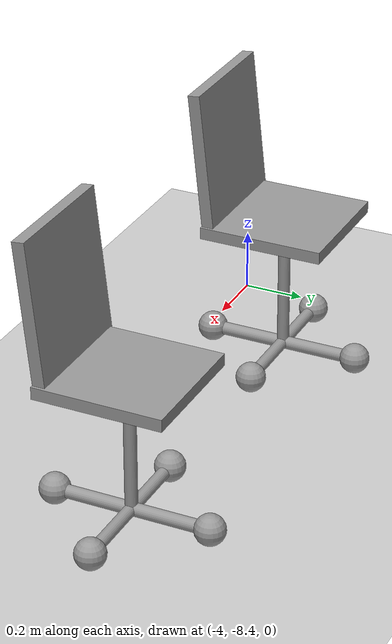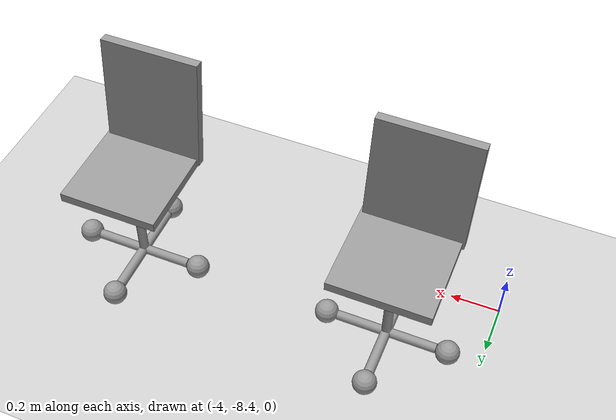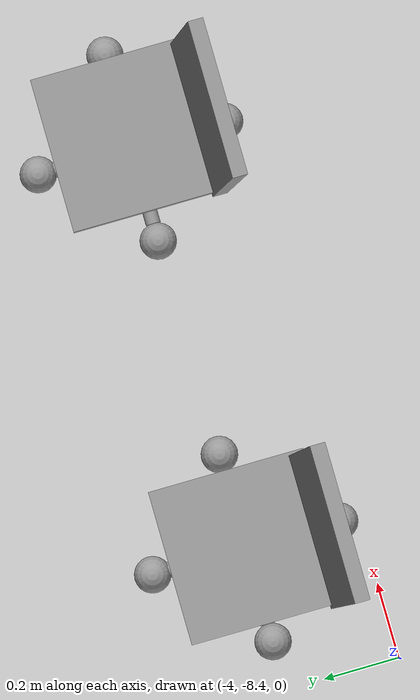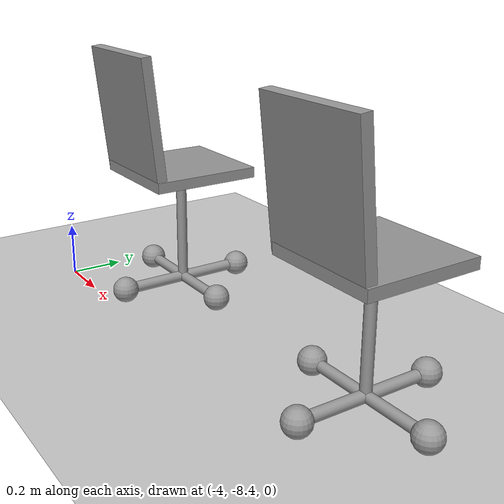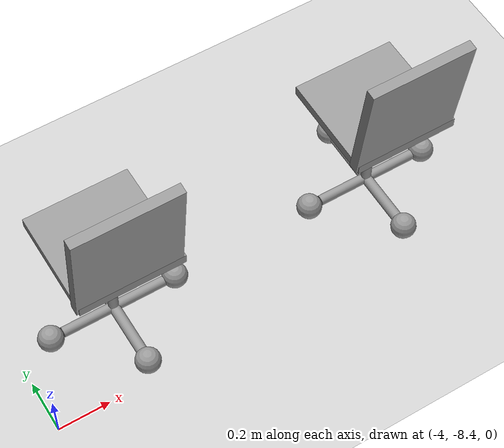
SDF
<sdf version="1.6">
 <world name="default">
  <model name="ground_plane">
   <static>1</static>
   <link name="link">
    <collision name="collision">
     <geometry><plane><normal>0 0 1</normal><size>100 100</size></plane></geometry>
     <surface><friction><ode><mu>100</mu><mu2>50</mu2></ode></friction></surface>
    </collision>
    <visual name="visual">
     <cast_shadows>0</cast_shadows>
     <geometry><plane><normal>0 0 1</normal><size>100 100</size></plane></geometry>
     <material>
      <script><uri>file://media/materials/scripts/gazebo.material</uri><name>Gazebo/Grey</name></script>
     </material>
    </visual>
   </link>
  </model>
  <model name="Sedia_2">
   <link name="link">
    <inertial>
     <mass>1</mass>
     <inertia><ixx>0.1</ixx><ixy>0</ixy><ixz>0</ixz><iyy>0.1</iyy><iyz>0</iyz><izz>0.1</izz></inertia>
     <pose>0 -0.05 0 0 -0 0</pose>
    </inertial>
    <pose>0 -0.05 0.04 0 -0 0</pose>
    <visual name="visual">
     <geometry><sphere><radius>0.0479725</radius></sphere></geometry>
     <material>
      <script><name>Gazebo/Grey</name><uri>file://media/materials/scripts/gazebo.material</uri></script>
      <shader type="vertex"><normal_map>__default__</normal_map></shader>
      <ambient>0.3 0.3 0.3 1</ambient>
      <diffuse>0.7 0.7 0.7 1</diffuse>
      <specular>0.01 0.01 0.01 1</specular>
      <emissive>0 0 0 1</emissive>
     </material>
    </visual>
    <collision name="collision">
     <geometry><sphere><radius>0.047973</radius></sphere></geometry>
     <surface>
      <friction>
       <ode><mu>1</mu><mu2>1</mu2><fdir1>0 0 0</fdir1><slip1>0</slip1><slip2>0</slip2></ode>
       <torsional>
        <coefficient>1</coefficient>
        <patch_radius>0</patch_radius>
        <surface_radius>0</surface_radius>
        <use_patch_radius>1</use_patch_radius>
        <ode><slip>0</slip></ode>
       </torsional>
      </friction>
      <bounce><restitution_coefficient>0</restitution_coefficient><threshold>1e+06</threshold></bounce>
      <contact>
       <collide_without_contact>0</collide_without_contact>
       <collide_without_contact_bitmask>1</collide_without_contact_bitmask>
       <collide_bitmask>1</collide_bitmask>
       <ode>
        <soft_cfm>0</soft_cfm>
        <soft_erp>0.2</soft_erp>
        <kp>1e+13</kp>
        <kd>1</kd>
        <max_vel>0.01</max_vel>
        <min_depth>0</min_depth>
       </ode>
       <bullet>
        <split_impulse>1</split_impulse>
        <split_impulse_penetration_threshold>-0.01</split_impulse_penetration_threshold>
        <soft_cfm>0</soft_cfm>
        <soft_erp>0.2</soft_erp>
        <kp>1e+13</kp>
        <kd>1</kd>
       </bullet>
      </contact>
     </surface>
    </collision>
   </link>
   <link name="link_0">
    <inertial>
     <mass>0.000595181</mass>
     <inertia>
      <ixx>8.34662e-06</ixx>
      <ixy>0</ixy>
      <ixz>0</ixz>
      <iyy>8.34662e-06</iyy>
      <iyz>0</iyz>
      <izz>1.11586e-07</izz>
     </inertia>
    </inertial>
    <pose>-0 0.2 0.2494 0 -0 0</pose>
    <visual name="visual">
     <geometry><cylinder><radius>0.0193636</radius><length>0.408851</length></cylinder></geometry>
     <material>
      <lighting>1</lighting>
      <script><uri>file://media/materials/scripts/gazebo.material</uri><name>Gazebo/Grey</name></script>
      <shader type="vertex"><normal_map>__default__</normal_map></shader>
      <ambient>0.3 0.3 0.3 1</ambient>
      <diffuse>0.7 0.7 0.7 1</diffuse>
      <specular>0.01 0.01 0.01 1</specular>
      <emissive>0 0 0 1</emissive>
     </material>
    </visual>
    <collision name="collision">
     <geometry><cylinder><radius>0.019364</radius><length>0.408851</length></cylinder></geometry>
     <surface>
      <friction>
       <ode><mu>1</mu><mu2>1</mu2><fdir1>0 0 0</fdir1><slip1>0</slip1><slip2>0</slip2></ode>
       <torsional>
        <coefficient>1</coefficient>
        <patch_radius>0</patch_radius>
        <surface_radius>0</surface_radius>
        <use_patch_radius>1</use_patch_radius>
        <ode><slip>0</slip></ode>
       </torsional>
      </friction>
      <bounce><restitution_coefficient>0</restitution_coefficient><threshold>1e+06</threshold></bounce>
      <contact>
       <collide_without_contact>0</collide_without_contact>
       <collide_without_contact_bitmask>1</collide_without_contact_bitmask>
       <collide_bitmask>1</collide_bitmask>
       <ode>
        <soft_cfm>0</soft_cfm>
        <soft_erp>0.2</soft_erp>
        <kp>1e+13</kp>
        <kd>1</kd>
        <max_vel>0.01</max_vel>
        <min_depth>0</min_depth>
       </ode>
       <bullet>
        <split_impulse>1</split_impulse>
        <split_impulse_penetration_threshold>-0.01</split_impulse_penetration_threshold>
        <soft_cfm>0</soft_cfm>
        <soft_erp>0.2</soft_erp>
        <kp>1e+13</kp>
        <kd>1</kd>
       </bullet>
      </contact>
     </surface>
    </collision>
   </link>
   <link name="link_0_clone">
    <inertial>
     <mass>0.000698061</mass>
     <inertia>
      <ixx>1.02332e-05</ixx>
      <ixy>0</ixy>
      <ixz>0</ixz>
      <iyy>1.02332e-05</iyy>
      <iyz>0</iyz>
      <izz>1.50251e-07</izz>
     </inertia>
    </inertial>
    <pose>0 0.2 0.04 -1.571 -0 0</pose>
    <visual name="visual">
     <geometry><cylinder><radius>0.0207471</radius><length>0.417878</length></cylinder></geometry>
     <material>
      <lighting>1</lighting>
      <script><uri>file://media/materials/scripts/gazebo.material</uri><name>Gazebo/Grey</name></script>
      <shader type="vertex"><normal_map>__default__</normal_map></shader>
      <ambient>0.3 0.3 0.3 1</ambient>
      <diffuse>0.7 0.7 0.7 1</diffuse>
      <specular>0.01 0.01 0.01 1</specular>
      <emissive>0 0 0 1</emissive>
     </material>
    </visual>
    <collision name="collision">
     <geometry><cylinder><radius>0.020748</radius><length>0.417878</length></cylinder></geometry>
     <surface>
      <friction>
       <ode><mu>1</mu><mu2>1</mu2><fdir1>0 0 0</fdir1><slip1>0</slip1><slip2>0</slip2></ode>
       <torsional>
        <coefficient>1</coefficient>
        <patch_radius>0</patch_radius>
        <surface_radius>0</surface_radius>
        <use_patch_radius>1</use_patch_radius>
        <ode><slip>0</slip></ode>
       </torsional>
      </friction>
      <bounce><restitution_coefficient>0</restitution_coefficient><threshold>1e+06</threshold></bounce>
      <contact>
       <collide_without_contact>0</collide_without_contact>
       <collide_without_contact_bitmask>1</collide_without_contact_bitmask>
       <collide_bitmask>1</collide_bitmask>
       <ode>
        <soft_cfm>0</soft_cfm>
        <soft_erp>0.2</soft_erp>
        <kp>1e+13</kp>
        <kd>1</kd>
        <max_vel>0.01</max_vel>
        <min_depth>0</min_depth>
       </ode>
       <bullet>
        <split_impulse>1</split_impulse>
        <split_impulse_penetration_threshold>-0.01</split_impulse_penetration_threshold>
        <soft_cfm>0</soft_cfm>
        <soft_erp>0.2</soft_erp>
        <kp>1e+13</kp>
        <kd>1</kd>
       </bullet>
      </contact>
     </surface>
    </collision>
   </link>
   <link name="link_0_clone_0">
    <inertial>
     <mass>0.00059327</mass>
     <inertia>
      <ixx>8.26633e-06</ixx>
      <ixy>0</ixy>
      <ixz>0</ixz>
      <iyy>8.26633e-06</iyy>
      <iyz>0</iyz>
      <izz>1.11228e-07</izz>
     </inertia>
    </inertial>
    <pose>0 0.2 0.04 0 -1.57059 0</pose>
    <visual name="visual">
     <geometry><cylinder><radius>0.0193636</radius><length>0.407525</length></cylinder></geometry>
     <material>
      <lighting>1</lighting>
      <script><uri>file://media/materials/scripts/gazebo.material</uri><name>Gazebo/Grey</name></script>
      <shader type="vertex"><normal_map>__default__</normal_map></shader>
      <ambient>0.3 0.3 0.3 1</ambient>
      <diffuse>0.7 0.7 0.7 1</diffuse>
      <specular>0.01 0.01 0.01 1</specular>
      <emissive>0 0 0 1</emissive>
     </material>
    </visual>
    <collision name="collision">
     <geometry><cylinder><radius>0.019364</radius><length>0.407525</length></cylinder></geometry>
     <surface>
      <friction>
       <ode><mu>1</mu><mu2>1</mu2><fdir1>0 0 0</fdir1><slip1>0</slip1><slip2>0</slip2></ode>
       <torsional>
        <coefficient>1</coefficient>
        <patch_radius>0</patch_radius>
        <surface_radius>0</surface_radius>
        <use_patch_radius>1</use_patch_radius>
        <ode><slip>0</slip></ode>
       </torsional>
      </friction>
      <bounce><restitution_coefficient>0</restitution_coefficient><threshold>1e+06</threshold></bounce>
      <contact>
       <collide_without_contact>0</collide_without_contact>
       <collide_without_contact_bitmask>1</collide_without_contact_bitmask>
       <collide_bitmask>1</collide_bitmask>
       <ode>
        <soft_cfm>0</soft_cfm>
        <soft_erp>0.2</soft_erp>
        <kp>1e+13</kp>
        <kd>1</kd>
        <max_vel>0.01</max_vel>
        <min_depth>0</min_depth>
       </ode>
       <bullet>
        <split_impulse>1</split_impulse>
        <split_impulse_penetration_threshold>-0.01</split_impulse_penetration_threshold>
        <soft_cfm>0</soft_cfm>
        <soft_erp>0.2</soft_erp>
        <kp>1e+13</kp>
        <kd>1</kd>
       </bullet>
      </contact>
     </surface>
    </collision>
   </link>
   <link name="link_1">
    <inertial>
     <mass>0.00616304</mass>
     <inertia>
      <ixx>8.379e-05</ixx>
      <ixy>0</ixy>
      <ixz>0</ixz>
      <iyy>8.148e-05</iyy>
      <iyz>0</iyz>
      <izz>0.00016374</izz>
     </inertia>
    </inertial>
    <pose>-0 0.2 0.48 0 -0 0</pose>
    <visual name="visual">
     <geometry><box><size>0.396445 0.402068 0.038566</size></box></geometry>
     <material>
      <lighting>1</lighting>
      <script><uri>file://media/materials/scripts/gazebo.material</uri><name>Gazebo/Grey</name></script>
      <shader type="vertex"><normal_map>__default__</normal_map></shader>
      <ambient>0.3 0.3 0.3 1</ambient>
      <diffuse>0.7 0.7 0.7 1</diffuse>
      <specular>0.01 0.01 0.01 1</specular>
      <emissive>0 0 0 1</emissive>
     </material>
    </visual>
    <collision name="collision">
     <geometry><box><size>0.396445 0.402068 0.038566</size></box></geometry>
     <surface>
      <friction>
       <ode><mu>1</mu><mu2>1</mu2><fdir1>0 0 0</fdir1><slip1>0</slip1><slip2>0</slip2></ode>
       <torsional>
        <coefficient>1</coefficient>
        <patch_radius>0</patch_radius>
        <surface_radius>0</surface_radius>
        <use_patch_radius>1</use_patch_radius>
        <ode><slip>0</slip></ode>
       </torsional>
      </friction>
      <bounce><restitution_coefficient>0</restitution_coefficient><threshold>1e+06</threshold></bounce>
      <contact>
       <collide_without_contact>0</collide_without_contact>
       <collide_without_contact_bitmask>1</collide_without_contact_bitmask>
       <collide_bitmask>1</collide_bitmask>
       <ode>
        <soft_cfm>0</soft_cfm>
        <soft_erp>0.2</soft_erp>
        <kp>1e+13</kp>
        <kd>1</kd>
        <max_vel>0.01</max_vel>
        <min_depth>0</min_depth>
       </ode>
       <bullet>
        <split_impulse>1</split_impulse>
        <split_impulse_penetration_threshold>-0.01</split_impulse_penetration_threshold>
        <soft_cfm>0</soft_cfm>
        <soft_erp>0.2</soft_erp>
        <kp>1e+13</kp>
        <kd>1</kd>
       </bullet>
      </contact>
     </surface>
    </collision>
   </link>
   <link name="link_1_clone">
    <inertial>
     <mass>0.0072018</mass>
     <inertia>
      <ixx>0.000133376</ixx>
      <ixy>0</ixy>
      <ixz>0</ixz>
      <iyy>9.52174e-05</iyy>
      <iyz>0</iyz>
      <izz>0.000226808</izz>
     </inertia>
    </inertial>
    <pose>-0.008803 -0.002064 0.701044 1.67698 -0 0</pose>
    <visual name="visual">
     <geometry><box><size>0.396445 0.46984 0.038566</size></box></geometry>
     <material>
      <lighting>1</lighting>
      <script><uri>file://media/materials/scripts/gazebo.material</uri><name>Gazebo/Grey</name></script>
      <shader type="vertex"><normal_map>__default__</normal_map></shader>
      <ambient>0.3 0.3 0.3 1</ambient>
      <diffuse>0.7 0.7 0.7 1</diffuse>
      <specular>0.01 0.01 0.01 1</specular>
      <emissive>0 0 0 1</emissive>
     </material>
    </visual>
    <collision name="collision">
     <geometry><box><size>0.396445 0.46984 0.038566</size></box></geometry>
     <surface>
      <friction>
       <ode><mu>1</mu><mu2>1</mu2><fdir1>0 0 0</fdir1><slip1>0</slip1><slip2>0</slip2></ode>
       <torsional>
        <coefficient>1</coefficient>
        <patch_radius>0</patch_radius>
        <surface_radius>0</surface_radius>
        <use_patch_radius>1</use_patch_radius>
        <ode><slip>0</slip></ode>
       </torsional>
      </friction>
      <bounce><restitution_coefficient>0</restitution_coefficient><threshold>1e+06</threshold></bounce>
      <contact>
       <collide_without_contact>0</collide_without_contact>
       <collide_without_contact_bitmask>1</collide_without_contact_bitmask>
       <collide_bitmask>1</collide_bitmask>
       <ode>
        <soft_cfm>0</soft_cfm>
        <soft_erp>0.2</soft_erp>
        <kp>1e+13</kp>
        <kd>1</kd>
        <max_vel>0.01</max_vel>
        <min_depth>0</min_depth>
       </ode>
       <bullet>
        <split_impulse>1</split_impulse>
        <split_impulse_penetration_threshold>-0.01</split_impulse_penetration_threshold>
        <soft_cfm>0</soft_cfm>
        <soft_erp>0.2</soft_erp>
        <kp>1e+13</kp>
        <kd>1</kd>
       </bullet>
      </contact>
     </surface>
    </collision>
   </link>
   <link name="link_clone">
    <inertial>
     <mass>1</mass>
     <inertia><ixx>0.1</ixx><ixy>0</ixy><ixz>0</ixz><iyy>0.1</iyy><iyz>0</iyz><izz>0.1</izz></inertia>
     <pose>0 0 0.04 0 -0 0</pose>
    </inertial>
    <pose>0.25 0.2 0.04 0 -0 0</pose>
    <visual name="visual">
     <geometry><sphere><radius>0.0479725</radius></sphere></geometry>
     <material>
      <script><name>Gazebo/Grey</name><uri>file://media/materials/scripts/gazebo.material</uri></script>
      <shader type="vertex"><normal_map>__default__</normal_map></shader>
      <ambient>0.3 0.3 0.3 1</ambient>
      <diffuse>0.7 0.7 0.7 1</diffuse>
      <specular>0.01 0.01 0.01 1</specular>
      <emissive>0 0 0 1</emissive>
     </material>
    </visual>
    <collision name="collision">
     <geometry><sphere><radius>0.047973</radius></sphere></geometry>
     <surface>
      <friction>
       <ode><mu>1</mu><mu2>1</mu2><fdir1>0 0 0</fdir1><slip1>0</slip1><slip2>0</slip2></ode>
       <torsional>
        <coefficient>1</coefficient>
        <patch_radius>0</patch_radius>
        <surface_radius>0</surface_radius>
        <use_patch_radius>1</use_patch_radius>
        <ode><slip>0</slip></ode>
       </torsional>
      </friction>
      <bounce><restitution_coefficient>0</restitution_coefficient><threshold>1e+06</threshold></bounce>
      <contact>
       <collide_without_contact>0</collide_without_contact>
       <collide_without_contact_bitmask>1</collide_without_contact_bitmask>
       <collide_bitmask>1</collide_bitmask>
       <ode>
        <soft_cfm>0</soft_cfm>
        <soft_erp>0.2</soft_erp>
        <kp>1e+13</kp>
        <kd>1</kd>
        <max_vel>0.01</max_vel>
        <min_depth>0</min_depth>
       </ode>
       <bullet>
        <split_impulse>1</split_impulse>
        <split_impulse_penetration_threshold>-0.01</split_impulse_penetration_threshold>
        <soft_cfm>0</soft_cfm>
        <soft_erp>0.2</soft_erp>
        <kp>1e+13</kp>
        <kd>1</kd>
       </bullet>
      </contact>
     </surface>
    </collision>
   </link>
   <link name="link_clone_0">
    <inertial>
     <mass>1</mass>
     <inertia><ixx>0.1</ixx><ixy>0</ixy><ixz>0</ixz><iyy>0.1</iyy><iyz>0</iyz><izz>0.1</izz></inertia>
    </inertial>
    <pose>-0 0.45 0.04 0 -0 0</pose>
    <visual name="visual">
     <geometry><sphere><radius>0.0479725</radius></sphere></geometry>
     <material>
      <script><name>Gazebo/Grey</name><uri>file://media/materials/scripts/gazebo.material</uri></script>
      <shader type="vertex"><normal_map>__default__</normal_map></shader>
      <ambient>0.3 0.3 0.3 1</ambient>
      <diffuse>0.7 0.7 0.7 1</diffuse>
      <specular>0.01 0.01 0.01 1</specular>
      <emissive>0 0 0 1</emissive>
     </material>
    </visual>
    <collision name="collision">
     <geometry><sphere><radius>0.047973</radius></sphere></geometry>
     <surface>
      <friction>
       <ode><mu>1</mu><mu2>1</mu2><fdir1>0 0 0</fdir1><slip1>0</slip1><slip2>0</slip2></ode>
       <torsional>
        <coefficient>1</coefficient>
        <patch_radius>0</patch_radius>
        <surface_radius>0</surface_radius>
        <use_patch_radius>1</use_patch_radius>
        <ode><slip>0</slip></ode>
       </torsional>
      </friction>
      <bounce><restitution_coefficient>0</restitution_coefficient><threshold>1e+06</threshold></bounce>
      <contact>
       <collide_without_contact>0</collide_without_contact>
       <collide_without_contact_bitmask>1</collide_without_contact_bitmask>
       <collide_bitmask>1</collide_bitmask>
       <ode>
        <soft_cfm>0</soft_cfm>
        <soft_erp>0.2</soft_erp>
        <kp>1e+13</kp>
        <kd>1</kd>
        <max_vel>0.01</max_vel>
        <min_depth>0</min_depth>
       </ode>
       <bullet>
        <split_impulse>1</split_impulse>
        <split_impulse_penetration_threshold>-0.01</split_impulse_penetration_threshold>
        <soft_cfm>0</soft_cfm>
        <soft_erp>0.2</soft_erp>
        <kp>1e+13</kp>
        <kd>1</kd>
       </bullet>
      </contact>
     </surface>
    </collision>
   </link>
   <link name="link_clone_1">
    <inertial>
     <mass>1</mass>
     <inertia><ixx>0.1</ixx><ixy>0</ixy><ixz>0</ixz><iyy>0.1</iyy><iyz>0</iyz><izz>0.1</izz></inertia>
    </inertial>
    <pose>-0.25 0.2 0.04 0 -0 0</pose>
    <visual name="visual">
     <geometry><sphere><radius>0.0479725</radius></sphere></geometry>
     <material>
      <script><name>Gazebo/Grey</name><uri>file://media/materials/scripts/gazebo.material</uri></script>
      <shader type="vertex"><normal_map>__default__</normal_map></shader>
      <ambient>0.3 0.3 0.3 1</ambient>
      <diffuse>0.7 0.7 0.7 1</diffuse>
      <specular>0.01 0.01 0.01 1</specular>
      <emissive>0 0 0 1</emissive>
     </material>
    </visual>
    <collision name="collision">
     <geometry><sphere><radius>0.047973</radius></sphere></geometry>
     <surface>
      <friction>
       <ode><mu>1</mu><mu2>1</mu2><fdir1>0 0 0</fdir1><slip1>0</slip1><slip2>0</slip2></ode>
       <torsional>
        <coefficient>1</coefficient>
        <patch_radius>0</patch_radius>
        <surface_radius>0</surface_radius>
        <use_patch_radius>1</use_patch_radius>
        <ode><slip>0</slip></ode>
       </torsional>
      </friction>
      <bounce><restitution_coefficient>0</restitution_coefficient><threshold>1e+06</threshold></bounce>
      <contact>
       <collide_without_contact>0</collide_without_contact>
       <collide_without_contact_bitmask>1</collide_without_contact_bitmask>
       <collide_bitmask>1</collide_bitmask>
       <ode>
        <soft_cfm>0</soft_cfm>
        <soft_erp>0.2</soft_erp>
        <kp>1e+13</kp>
        <kd>1</kd>
        <max_vel>0.01</max_vel>
        <min_depth>0</min_depth>
       </ode>
       <bullet>
        <split_impulse>1</split_impulse>
        <split_impulse_penetration_threshold>-0.01</split_impulse_penetration_threshold>
        <soft_cfm>0</soft_cfm>
        <soft_erp>0.2</soft_erp>
        <kp>1e+13</kp>
        <kd>1</kd>
       </bullet>
      </contact>
     </surface>
    </collision>
   </link>
   <joint name="link_0_clone_0_JOINT_1" type="fixed">
    <parent>link_0_clone_0</parent>
    <child>link_clone</child>
    <physics>
     <ode><limit><cfm>0</cfm><erp>0.2</erp></limit><suspension><cfm>0</cfm><erp>0.2</erp></suspension></ode>
    </physics>
   </joint>
   <joint name="link_0_clone_0_JOINT_2" type="fixed">
    <parent>link_0_clone_0</parent>
    <child>link_clone_1</child>
    <physics>
     <ode><limit><cfm>0</cfm><erp>0.2</erp></limit><suspension><cfm>0</cfm><erp>0.2</erp></suspension></ode>
    </physics>
   </joint>
   <joint name="link_0_clone_JOINT_3" type="fixed">
    <parent>link_0_clone</parent>
    <child>link_clone_0</child>
    <physics>
     <ode><limit><cfm>0</cfm><erp>0.2</erp></limit><suspension><cfm>0</cfm><erp>0.2</erp></suspension></ode>
    </physics>
   </joint>
   <joint name="link_0_clone_JOINT_4" type="fixed">
    <parent>link_0_clone</parent>
    <child>link</child>
    <physics>
     <ode><limit><cfm>0</cfm><erp>0.2</erp></limit><suspension><cfm>0</cfm><erp>0.2</erp></suspension></ode>
    </physics>
   </joint>
   <joint name="link_1_JOINT_0" type="fixed">
    <parent>link_1</parent>
    <child>link_1_clone</child>
    <physics>
     <ode><limit><cfm>0</cfm><erp>0.2</erp></limit><suspension><cfm>0</cfm><erp>0.2</erp></suspension></ode>
    </physics>
   </joint>
   <joint name="link_1_JOINT_4" type="fixed">
    <parent>link_1</parent>
    <child>link_0</child>
    <physics>
     <ode><limit><cfm>0</cfm><erp>0.2</erp></limit><suspension><cfm>0</cfm><erp>0.2</erp></suspension></ode>
    </physics>
   </joint>
   <joint name="link_JOINT_3" type="fixed">
    <parent>link</parent>
    <child>link_0</child>
    <physics>
     <ode><limit><cfm>0</cfm><erp>0.2</erp></limit><suspension><cfm>0</cfm><erp>0.2</erp></suspension></ode>
    </physics>
   </joint>
   <joint name="link_clone_0_JOINT_0" type="fixed">
    <parent>link_clone_0</parent>
    <child>link_0_LINK_FRAME_VISUAL___Y_AXIS</child>
    <physics>
     <ode><limit><cfm>0</cfm><erp>0.2</erp></limit><suspension><cfm>0</cfm><erp>0.2</erp></suspension></ode>
    </physics>
   </joint>
   <joint name="link_clone_1_JOINT_2" type="fixed">
    <parent>link_clone_1</parent>
    <child>link_0</child>
    <physics>
     <ode><limit><cfm>0</cfm><erp>0.2</erp></limit><suspension><cfm>0</cfm><erp>0.2</erp></suspension></ode>
    </physics>
   </joint>
   <joint name="link_clone_JOINT_1" type="fixed">
    <parent>link_clone</parent>
    <child>link_0</child>
    <physics>
     <ode><limit><cfm>0</cfm><erp>0.2</erp></limit><suspension><cfm>0</cfm><erp>0.2</erp></suspension></ode>
    </physics>
   </joint>
   <static>0</static>
   <pose>-3.61941 -8.29886 0.007985 0.000343 5e-06 -1e-06</pose>
  </model>
  <model name="Sedia_3">
   <link name="link">
    <inertial>
     <mass>1</mass>
     <inertia><ixx>0.1</ixx><ixy>0</ixy><ixz>0</ixz><iyy>0.1</iyy><iyz>0</iyz><izz>0.1</izz></inertia>
     <pose>0 -0.05 0 0 -0 0</pose>
    </inertial>
    <pose>0 -0.05 0.04 0 -0 0</pose>
    <visual name="visual">
     <geometry><sphere><radius>0.0479725</radius></sphere></geometry>
     <material>
      <script><name>Gazebo/Grey</name><uri>file://media/materials/scripts/gazebo.material</uri></script>
      <shader type="vertex"><normal_map>__default__</normal_map></shader>
      <ambient>0.3 0.3 0.3 1</ambient>
      <diffuse>0.7 0.7 0.7 1</diffuse>
      <specular>0.01 0.01 0.01 1</specular>
      <emissive>0 0 0 1</emissive>
     </material>
    </visual>
    <collision name="collision">
     <geometry><sphere><radius>0.047973</radius></sphere></geometry>
     <surface>
      <friction>
       <ode><mu>1</mu><mu2>1</mu2><fdir1>0 0 0</fdir1><slip1>0</slip1><slip2>0</slip2></ode>
       <torsional>
        <coefficient>1</coefficient>
        <patch_radius>0</patch_radius>
        <surface_radius>0</surface_radius>
        <use_patch_radius>1</use_patch_radius>
        <ode><slip>0</slip></ode>
       </torsional>
      </friction>
      <bounce><restitution_coefficient>0</restitution_coefficient><threshold>1e+06</threshold></bounce>
      <contact>
       <collide_without_contact>0</collide_without_contact>
       <collide_without_contact_bitmask>1</collide_without_contact_bitmask>
       <collide_bitmask>1</collide_bitmask>
       <ode>
        <soft_cfm>0</soft_cfm>
        <soft_erp>0.2</soft_erp>
        <kp>1e+13</kp>
        <kd>1</kd>
        <max_vel>0.01</max_vel>
        <min_depth>0</min_depth>
       </ode>
       <bullet>
        <split_impulse>1</split_impulse>
        <split_impulse_penetration_threshold>-0.01</split_impulse_penetration_threshold>
        <soft_cfm>0</soft_cfm>
        <soft_erp>0.2</soft_erp>
        <kp>1e+13</kp>
        <kd>1</kd>
       </bullet>
      </contact>
     </surface>
    </collision>
   </link>
   <link name="link_0">
    <inertial>
     <mass>0.000595181</mass>
     <inertia>
      <ixx>8.34662e-06</ixx>
      <ixy>0</ixy>
      <ixz>0</ixz>
      <iyy>8.34662e-06</iyy>
      <iyz>0</iyz>
      <izz>1.11586e-07</izz>
     </inertia>
    </inertial>
    <pose>-0 0.2 0.2494 0 -0 0</pose>
    <visual name="visual">
     <geometry><cylinder><radius>0.0193636</radius><length>0.408851</length></cylinder></geometry>
     <material>
      <lighting>1</lighting>
      <script><uri>file://media/materials/scripts/gazebo.material</uri><name>Gazebo/Grey</name></script>
      <shader type="vertex"><normal_map>__default__</normal_map></shader>
      <ambient>0.3 0.3 0.3 1</ambient>
      <diffuse>0.7 0.7 0.7 1</diffuse>
      <specular>0.01 0.01 0.01 1</specular>
      <emissive>0 0 0 1</emissive>
     </material>
    </visual>
    <collision name="collision">
     <geometry><cylinder><radius>0.019364</radius><length>0.408851</length></cylinder></geometry>
     <surface>
      <friction>
       <ode><mu>1</mu><mu2>1</mu2><fdir1>0 0 0</fdir1><slip1>0</slip1><slip2>0</slip2></ode>
       <torsional>
        <coefficient>1</coefficient>
        <patch_radius>0</patch_radius>
        <surface_radius>0</surface_radius>
        <use_patch_radius>1</use_patch_radius>
        <ode><slip>0</slip></ode>
       </torsional>
      </friction>
      <bounce><restitution_coefficient>0</restitution_coefficient><threshold>1e+06</threshold></bounce>
      <contact>
       <collide_without_contact>0</collide_without_contact>
       <collide_without_contact_bitmask>1</collide_without_contact_bitmask>
       <collide_bitmask>1</collide_bitmask>
       <ode>
        <soft_cfm>0</soft_cfm>
        <soft_erp>0.2</soft_erp>
        <kp>1e+13</kp>
        <kd>1</kd>
        <max_vel>0.01</max_vel>
        <min_depth>0</min_depth>
       </ode>
       <bullet>
        <split_impulse>1</split_impulse>
        <split_impulse_penetration_threshold>-0.01</split_impulse_penetration_threshold>
        <soft_cfm>0</soft_cfm>
        <soft_erp>0.2</soft_erp>
        <kp>1e+13</kp>
        <kd>1</kd>
       </bullet>
      </contact>
     </surface>
    </collision>
   </link>
   <link name="link_0_clone">
    <inertial>
     <mass>0.000698061</mass>
     <inertia>
      <ixx>1.02332e-05</ixx>
      <ixy>0</ixy>
      <ixz>0</ixz>
      <iyy>1.02332e-05</iyy>
      <iyz>0</iyz>
      <izz>1.50251e-07</izz>
     </inertia>
    </inertial>
    <pose>0 0.2 0.04 -1.571 -0 0</pose>
    <visual name="visual">
     <geometry><cylinder><radius>0.0207471</radius><length>0.417878</length></cylinder></geometry>
     <material>
      <lighting>1</lighting>
      <script><uri>file://media/materials/scripts/gazebo.material</uri><name>Gazebo/Grey</name></script>
      <shader type="vertex"><normal_map>__default__</normal_map></shader>
      <ambient>0.3 0.3 0.3 1</ambient>
      <diffuse>0.7 0.7 0.7 1</diffuse>
      <specular>0.01 0.01 0.01 1</specular>
      <emissive>0 0 0 1</emissive>
     </material>
    </visual>
    <collision name="collision">
     <geometry><cylinder><radius>0.020748</radius><length>0.417878</length></cylinder></geometry>
     <surface>
      <friction>
       <ode><mu>1</mu><mu2>1</mu2><fdir1>0 0 0</fdir1><slip1>0</slip1><slip2>0</slip2></ode>
       <torsional>
        <coefficient>1</coefficient>
        <patch_radius>0</patch_radius>
        <surface_radius>0</surface_radius>
        <use_patch_radius>1</use_patch_radius>
        <ode><slip>0</slip></ode>
       </torsional>
      </friction>
      <bounce><restitution_coefficient>0</restitution_coefficient><threshold>1e+06</threshold></bounce>
      <contact>
       <collide_without_contact>0</collide_without_contact>
       <collide_without_contact_bitmask>1</collide_without_contact_bitmask>
       <collide_bitmask>1</collide_bitmask>
       <ode>
        <soft_cfm>0</soft_cfm>
        <soft_erp>0.2</soft_erp>
        <kp>1e+13</kp>
        <kd>1</kd>
        <max_vel>0.01</max_vel>
        <min_depth>0</min_depth>
       </ode>
       <bullet>
        <split_impulse>1</split_impulse>
        <split_impulse_penetration_threshold>-0.01</split_impulse_penetration_threshold>
        <soft_cfm>0</soft_cfm>
        <soft_erp>0.2</soft_erp>
        <kp>1e+13</kp>
        <kd>1</kd>
       </bullet>
      </contact>
     </surface>
    </collision>
   </link>
   <link name="link_0_clone_0">
    <inertial>
     <mass>0.00059327</mass>
     <inertia>
      <ixx>8.26633e-06</ixx>
      <ixy>0</ixy>
      <ixz>0</ixz>
      <iyy>8.26633e-06</iyy>
      <iyz>0</iyz>
      <izz>1.11228e-07</izz>
     </inertia>
    </inertial>
    <pose>0 0.2 0.04 0 -1.57059 0</pose>
    <visual name="visual">
     <geometry><cylinder><radius>0.0193636</radius><length>0.407525</length></cylinder></geometry>
     <material>
      <lighting>1</lighting>
      <script><uri>file://media/materials/scripts/gazebo.material</uri><name>Gazebo/Grey</name></script>
      <shader type="vertex"><normal_map>__default__</normal_map></shader>
      <ambient>0.3 0.3 0.3 1</ambient>
      <diffuse>0.7 0.7 0.7 1</diffuse>
      <specular>0.01 0.01 0.01 1</specular>
      <emissive>0 0 0 1</emissive>
     </material>
    </visual>
    <collision name="collision">
     <geometry><cylinder><radius>0.019364</radius><length>0.407525</length></cylinder></geometry>
     <surface>
      <friction>
       <ode><mu>1</mu><mu2>1</mu2><fdir1>0 0 0</fdir1><slip1>0</slip1><slip2>0</slip2></ode>
       <torsional>
        <coefficient>1</coefficient>
        <patch_radius>0</patch_radius>
        <surface_radius>0</surface_radius>
        <use_patch_radius>1</use_patch_radius>
        <ode><slip>0</slip></ode>
       </torsional>
      </friction>
      <bounce><restitution_coefficient>0</restitution_coefficient><threshold>1e+06</threshold></bounce>
      <contact>
       <collide_without_contact>0</collide_without_contact>
       <collide_without_contact_bitmask>1</collide_without_contact_bitmask>
       <collide_bitmask>1</collide_bitmask>
       <ode>
        <soft_cfm>0</soft_cfm>
        <soft_erp>0.2</soft_erp>
        <kp>1e+13</kp>
        <kd>1</kd>
        <max_vel>0.01</max_vel>
        <min_depth>0</min_depth>
       </ode>
       <bullet>
        <split_impulse>1</split_impulse>
        <split_impulse_penetration_threshold>-0.01</split_impulse_penetration_threshold>
        <soft_cfm>0</soft_cfm>
        <soft_erp>0.2</soft_erp>
        <kp>1e+13</kp>
        <kd>1</kd>
       </bullet>
      </contact>
     </surface>
    </collision>
   </link>
   <link name="link_1">
    <inertial>
     <mass>0.00616304</mass>
     <inertia>
      <ixx>8.379e-05</ixx>
      <ixy>0</ixy>
      <ixz>0</ixz>
      <iyy>8.148e-05</iyy>
      <iyz>0</iyz>
      <izz>0.00016374</izz>
     </inertia>
    </inertial>
    <pose>-0 0.2 0.48 0 -0 0</pose>
    <visual name="visual">
     <geometry><box><size>0.396445 0.402068 0.038566</size></box></geometry>
     <material>
      <lighting>1</lighting>
      <script><uri>file://media/materials/scripts/gazebo.material</uri><name>Gazebo/Grey</name></script>
      <shader type="vertex"><normal_map>__default__</normal_map></shader>
      <ambient>0.3 0.3 0.3 1</ambient>
      <diffuse>0.7 0.7 0.7 1</diffuse>
      <specular>0.01 0.01 0.01 1</specular>
      <emissive>0 0 0 1</emissive>
     </material>
    </visual>
    <collision name="collision">
     <geometry><box><size>0.396445 0.402068 0.038566</size></box></geometry>
     <surface>
      <friction>
       <ode><mu>1</mu><mu2>1</mu2><fdir1>0 0 0</fdir1><slip1>0</slip1><slip2>0</slip2></ode>
       <torsional>
        <coefficient>1</coefficient>
        <patch_radius>0</patch_radius>
        <surface_radius>0</surface_radius>
        <use_patch_radius>1</use_patch_radius>
        <ode><slip>0</slip></ode>
       </torsional>
      </friction>
      <bounce><restitution_coefficient>0</restitution_coefficient><threshold>1e+06</threshold></bounce>
      <contact>
       <collide_without_contact>0</collide_without_contact>
       <collide_without_contact_bitmask>1</collide_without_contact_bitmask>
       <collide_bitmask>1</collide_bitmask>
       <ode>
        <soft_cfm>0</soft_cfm>
        <soft_erp>0.2</soft_erp>
        <kp>1e+13</kp>
        <kd>1</kd>
        <max_vel>0.01</max_vel>
        <min_depth>0</min_depth>
       </ode>
       <bullet>
        <split_impulse>1</split_impulse>
        <split_impulse_penetration_threshold>-0.01</split_impulse_penetration_threshold>
        <soft_cfm>0</soft_cfm>
        <soft_erp>0.2</soft_erp>
        <kp>1e+13</kp>
        <kd>1</kd>
       </bullet>
      </contact>
     </surface>
    </collision>
   </link>
   <link name="link_1_clone">
    <inertial>
     <mass>0.0072018</mass>
     <inertia>
      <ixx>0.000133376</ixx>
      <ixy>0</ixy>
      <ixz>0</ixz>
      <iyy>9.52174e-05</iyy>
      <iyz>0</iyz>
      <izz>0.000226808</izz>
     </inertia>
    </inertial>
    <pose>-0.008803 -0.002064 0.701044 1.67698 -0 0</pose>
    <visual name="visual">
     <geometry><box><size>0.396445 0.46984 0.038566</size></box></geometry>
     <material>
      <lighting>1</lighting>
      <script><uri>file://media/materials/scripts/gazebo.material</uri><name>Gazebo/Grey</name></script>
      <shader type="vertex"><normal_map>__default__</normal_map></shader>
      <ambient>0.3 0.3 0.3 1</ambient>
      <diffuse>0.7 0.7 0.7 1</diffuse>
      <specular>0.01 0.01 0.01 1</specular>
      <emissive>0 0 0 1</emissive>
     </material>
    </visual>
    <collision name="collision">
     <geometry><box><size>0.396445 0.46984 0.038566</size></box></geometry>
     <surface>
      <friction>
       <ode><mu>1</mu><mu2>1</mu2><fdir1>0 0 0</fdir1><slip1>0</slip1><slip2>0</slip2></ode>
       <torsional>
        <coefficient>1</coefficient>
        <patch_radius>0</patch_radius>
        <surface_radius>0</surface_radius>
        <use_patch_radius>1</use_patch_radius>
        <ode><slip>0</slip></ode>
       </torsional>
      </friction>
      <bounce><restitution_coefficient>0</restitution_coefficient><threshold>1e+06</threshold></bounce>
      <contact>
       <collide_without_contact>0</collide_without_contact>
       <collide_without_contact_bitmask>1</collide_without_contact_bitmask>
       <collide_bitmask>1</collide_bitmask>
       <ode>
        <soft_cfm>0</soft_cfm>
        <soft_erp>0.2</soft_erp>
        <kp>1e+13</kp>
        <kd>1</kd>
        <max_vel>0.01</max_vel>
        <min_depth>0</min_depth>
       </ode>
       <bullet>
        <split_impulse>1</split_impulse>
        <split_impulse_penetration_threshold>-0.01</split_impulse_penetration_threshold>
        <soft_cfm>0</soft_cfm>
        <soft_erp>0.2</soft_erp>
        <kp>1e+13</kp>
        <kd>1</kd>
       </bullet>
      </contact>
     </surface>
    </collision>
   </link>
   <link name="link_clone">
    <inertial>
     <mass>1</mass>
     <inertia><ixx>0.1</ixx><ixy>0</ixy><ixz>0</ixz><iyy>0.1</iyy><iyz>0</iyz><izz>0.1</izz></inertia>
     <pose>0 0 0.04 0 -0 0</pose>
    </inertial>
    <pose>0.25 0.2 0.04 0 -0 0</pose>
    <visual name="visual">
     <geometry><sphere><radius>0.0479725</radius></sphere></geometry>
     <material>
      <script><name>Gazebo/Grey</name><uri>file://media/materials/scripts/gazebo.material</uri></script>
      <shader type="vertex"><normal_map>__default__</normal_map></shader>
      <ambient>0.3 0.3 0.3 1</ambient>
      <diffuse>0.7 0.7 0.7 1</diffuse>
      <specular>0.01 0.01 0.01 1</specular>
      <emissive>0 0 0 1</emissive>
     </material>
    </visual>
    <collision name="collision">
     <geometry><sphere><radius>0.047973</radius></sphere></geometry>
     <surface>
      <friction>
       <ode><mu>1</mu><mu2>1</mu2><fdir1>0 0 0</fdir1><slip1>0</slip1><slip2>0</slip2></ode>
       <torsional>
        <coefficient>1</coefficient>
        <patch_radius>0</patch_radius>
        <surface_radius>0</surface_radius>
        <use_patch_radius>1</use_patch_radius>
        <ode><slip>0</slip></ode>
       </torsional>
      </friction>
      <bounce><restitution_coefficient>0</restitution_coefficient><threshold>1e+06</threshold></bounce>
      <contact>
       <collide_without_contact>0</collide_without_contact>
       <collide_without_contact_bitmask>1</collide_without_contact_bitmask>
       <collide_bitmask>1</collide_bitmask>
       <ode>
        <soft_cfm>0</soft_cfm>
        <soft_erp>0.2</soft_erp>
        <kp>1e+13</kp>
        <kd>1</kd>
        <max_vel>0.01</max_vel>
        <min_depth>0</min_depth>
       </ode>
       <bullet>
        <split_impulse>1</split_impulse>
        <split_impulse_penetration_threshold>-0.01</split_impulse_penetration_threshold>
        <soft_cfm>0</soft_cfm>
        <soft_erp>0.2</soft_erp>
        <kp>1e+13</kp>
        <kd>1</kd>
       </bullet>
      </contact>
     </surface>
    </collision>
   </link>
   <link name="link_clone_0">
    <inertial>
     <mass>1</mass>
     <inertia><ixx>0.1</ixx><ixy>0</ixy><ixz>0</ixz><iyy>0.1</iyy><iyz>0</iyz><izz>0.1</izz></inertia>
    </inertial>
    <pose>-0 0.45 0.04 0 -0 0</pose>
    <visual name="visual">
     <geometry><sphere><radius>0.0479725</radius></sphere></geometry>
     <material>
      <script><name>Gazebo/Grey</name><uri>file://media/materials/scripts/gazebo.material</uri></script>
      <shader type="vertex"><normal_map>__default__</normal_map></shader>
      <ambient>0.3 0.3 0.3 1</ambient>
      <diffuse>0.7 0.7 0.7 1</diffuse>
      <specular>0.01 0.01 0.01 1</specular>
      <emissive>0 0 0 1</emissive>
     </material>
    </visual>
    <collision name="collision">
     <geometry><sphere><radius>0.047973</radius></sphere></geometry>
     <surface>
      <friction>
       <ode><mu>1</mu><mu2>1</mu2><fdir1>0 0 0</fdir1><slip1>0</slip1><slip2>0</slip2></ode>
       <torsional>
        <coefficient>1</coefficient>
        <patch_radius>0</patch_radius>
        <surface_radius>0</surface_radius>
        <use_patch_radius>1</use_patch_radius>
        <ode><slip>0</slip></ode>
       </torsional>
      </friction>
      <bounce><restitution_coefficient>0</restitution_coefficient><threshold>1e+06</threshold></bounce>
      <contact>
       <collide_without_contact>0</collide_without_contact>
       <collide_without_contact_bitmask>1</collide_without_contact_bitmask>
       <collide_bitmask>1</collide_bitmask>
       <ode>
        <soft_cfm>0</soft_cfm>
        <soft_erp>0.2</soft_erp>
        <kp>1e+13</kp>
        <kd>1</kd>
        <max_vel>0.01</max_vel>
        <min_depth>0</min_depth>
       </ode>
       <bullet>
        <split_impulse>1</split_impulse>
        <split_impulse_penetration_threshold>-0.01</split_impulse_penetration_threshold>
        <soft_cfm>0</soft_cfm>
        <soft_erp>0.2</soft_erp>
        <kp>1e+13</kp>
        <kd>1</kd>
       </bullet>
      </contact>
     </surface>
    </collision>
   </link>
   <link name="link_clone_1">
    <inertial>
     <mass>1</mass>
     <inertia><ixx>0.1</ixx><ixy>0</ixy><ixz>0</ixz><iyy>0.1</iyy><iyz>0</iyz><izz>0.1</izz></inertia>
    </inertial>
    <pose>-0.25 0.2 0.04 0 -0 0</pose>
    <visual name="visual">
     <geometry><sphere><radius>0.0479725</radius></sphere></geometry>
     <material>
      <script><name>Gazebo/Grey</name><uri>file://media/materials/scripts/gazebo.material</uri></script>
      <shader type="vertex"><normal_map>__default__</normal_map></shader>
      <ambient>0.3 0.3 0.3 1</ambient>
      <diffuse>0.7 0.7 0.7 1</diffuse>
      <specular>0.01 0.01 0.01 1</specular>
      <emissive>0 0 0 1</emissive>
     </material>
    </visual>
    <collision name="collision">
     <geometry><sphere><radius>0.047973</radius></sphere></geometry>
     <surface>
      <friction>
       <ode><mu>1</mu><mu2>1</mu2><fdir1>0 0 0</fdir1><slip1>0</slip1><slip2>0</slip2></ode>
       <torsional>
        <coefficient>1</coefficient>
        <patch_radius>0</patch_radius>
        <surface_radius>0</surface_radius>
        <use_patch_radius>1</use_patch_radius>
        <ode><slip>0</slip></ode>
       </torsional>
      </friction>
      <bounce><restitution_coefficient>0</restitution_coefficient><threshold>1e+06</threshold></bounce>
      <contact>
       <collide_without_contact>0</collide_without_contact>
       <collide_without_contact_bitmask>1</collide_without_contact_bitmask>
       <collide_bitmask>1</collide_bitmask>
       <ode>
        <soft_cfm>0</soft_cfm>
        <soft_erp>0.2</soft_erp>
        <kp>1e+13</kp>
        <kd>1</kd>
        <max_vel>0.01</max_vel>
        <min_depth>0</min_depth>
       </ode>
       <bullet>
        <split_impulse>1</split_impulse>
        <split_impulse_penetration_threshold>-0.01</split_impulse_penetration_threshold>
        <soft_cfm>0</soft_cfm>
        <soft_erp>0.2</soft_erp>
        <kp>1e+13</kp>
        <kd>1</kd>
       </bullet>
      </contact>
     </surface>
    </collision>
   </link>
   <joint name="link_0_clone_0_JOINT_1" type="fixed">
    <parent>link_0_clone_0</parent>
    <child>link_clone</child>
    <physics>
     <ode><limit><cfm>0</cfm><erp>0.2</erp></limit><suspension><cfm>0</cfm><erp>0.2</erp></suspension></ode>
    </physics>
   </joint>
   <joint name="link_0_clone_0_JOINT_2" type="fixed">
    <parent>link_0_clone_0</parent>
    <child>link_clone_1</child>
    <physics>
     <ode><limit><cfm>0</cfm><erp>0.2</erp></limit><suspension><cfm>0</cfm><erp>0.2</erp></suspension></ode>
    </physics>
   </joint>
   <joint name="link_0_clone_JOINT_3" type="fixed">
    <parent>link_0_clone</parent>
    <child>link_clone_0</child>
    <physics>
     <ode><limit><cfm>0</cfm><erp>0.2</erp></limit><suspension><cfm>0</cfm><erp>0.2</erp></suspension></ode>
    </physics>
   </joint>
   <joint name="link_0_clone_JOINT_4" type="fixed">
    <parent>link_0_clone</parent>
    <child>link</child>
    <physics>
     <ode><limit><cfm>0</cfm><erp>0.2</erp></limit><suspension><cfm>0</cfm><erp>0.2</erp></suspension></ode>
    </physics>
   </joint>
   <joint name="link_1_JOINT_0" type="fixed">
    <parent>link_1</parent>
    <child>link_1_clone</child>
    <physics>
     <ode><limit><cfm>0</cfm><erp>0.2</erp></limit><suspension><cfm>0</cfm><erp>0.2</erp></suspension></ode>
    </physics>
   </joint>
   <joint name="link_1_JOINT_4" type="fixed">
    <parent>link_1</parent>
    <child>link_0</child>
    <physics>
     <ode><limit><cfm>0</cfm><erp>0.2</erp></limit><suspension><cfm>0</cfm><erp>0.2</erp></suspension></ode>
    </physics>
   </joint>
   <joint name="link_JOINT_3" type="fixed">
    <parent>link</parent>
    <child>link_0</child>
    <physics>
     <ode><limit><cfm>0</cfm><erp>0.2</erp></limit><suspension><cfm>0</cfm><erp>0.2</erp></suspension></ode>
    </physics>
   </joint>
   <joint name="link_clone_0_JOINT_0" type="fixed">
    <parent>link_clone_0</parent>
    <child>link_0_LINK_FRAME_VISUAL___Y_AXIS</child>
    <physics>
     <ode><limit><cfm>0</cfm><erp>0.2</erp></limit><suspension><cfm>0</cfm><erp>0.2</erp></suspension></ode>
    </physics>
   </joint>
   <joint name="link_clone_1_JOINT_2" type="fixed">
    <parent>link_clone_1</parent>
    <child>link_0</child>
    <physics>
     <ode><limit><cfm>0</cfm><erp>0.2</erp></limit><suspension><cfm>0</cfm><erp>0.2</erp></suspension></ode>
    </physics>
   </joint>
   <joint name="link_clone_JOINT_1" type="fixed">
    <parent>link_clone</parent>
    <child>link_0</child>
    <physics>
     <ode><limit><cfm>0</cfm><erp>0.2</erp></limit><suspension><cfm>0</cfm><erp>0.2</erp></suspension></ode>
    </physics>
   </joint>
   <static>0</static>
   <pose>-2.54731 -8.29886 0.007985 0.000343 5e-06 -1e-06</pose>
  </model>
 </world>
</sdf>
